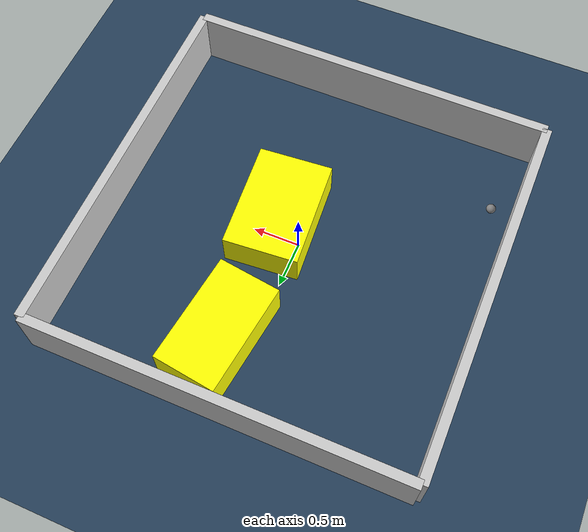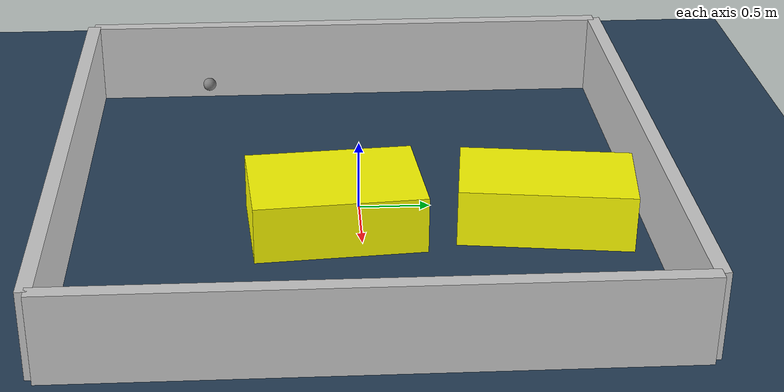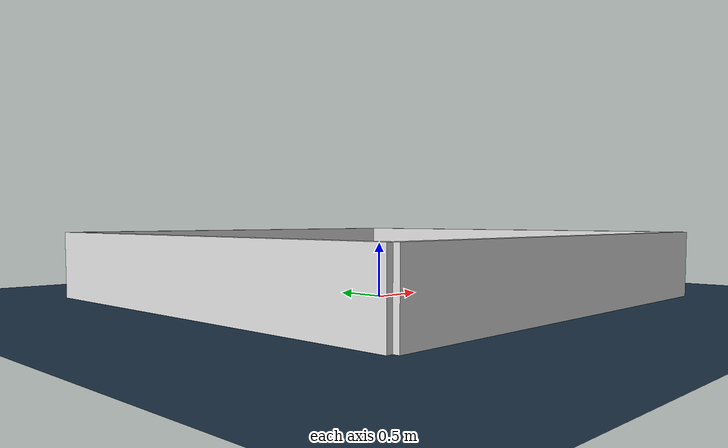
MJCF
<?xml version="1.0" ?>
<mujoco model="generated_environment">
  <option timestep="0.01" integrator="RK4" cone="elliptic"/>
  <default>
    <geom density="1"/>
  </default>
  <asset>
    <texture builtin="gradient" height="3072" rgb1="0.3 0.5 0.7" rgb2="0 0 0" type="skybox" width="512"/>
    <texture builtin="checker" height="300" mark="edge" markrgb="0.8 0.8 0.8" name="groundplane" rgb1="0.2 0.3 0.4" rgb2="0.1 0.2 0.3" type="2d" width="300"/>
    <material name="groundplane" reflectance="0.2" texrepeat="5 5" texture="groundplane" texuniform="true"/>
    <material name="robot" rgba="0.0 1.0 0.0 1"/>
  </asset>
  <worldbody>
    <light dir="0 0 -1" directional="true" pos="0 0 1.5"/>
    <geom condim="4" friction="1.0 0.005 0.001" material="groundplane" name="floor" size="0 0 0.05" type="plane"/>
    <body name="walls">
      <geom name="wall_1" condim="4" pos="-2.0 0.0 0.3" rgba="0.800000011920929 0.800000011920929 0.800000011920929 1.0" size="0.05 2.0 0.3" type="box"/>
      <geom name="wall_2" condim="4" pos="2.0 0.0 0.3" rgba="0.800000011920929 0.800000011920929 0.800000011920929 1.0" size="0.05 2.0 0.3" type="box"/>
      <geom name="wall_3" condim="4" pos="0.0 -2.0 0.3" rgba="0.800000011920929 0.800000011920929 0.800000011920929 1.0" size="2.0 0.05 0.3" type="box"/>
      <geom name="wall_4" condim="4" pos="0.0 2.0 0.3" rgba="0.800000011920929 0.800000011920929 0.800000011920929 1.0" size="2.0 0.05 0.3" type="box"/>
    </body>
    <body name="robot">
      <joint name="joint_x" type="slide" pos="0 0 0" axis="1 0 0"/>
      <joint name="joint_y" type="slide" pos="0 0 0" axis="0 1 0"/>
      <geom name="robot" type="sphere" pos="-1.7353956623273792 -1.094852177765004 0.2" size="0.05" mass="5." friction="1.0 0.005 0.0001" condim="4"/>
      <site name="sensor_ball"/>
    </body>
    <body name="obstacle_1_movable">
      <geom name="obstacle_1_movable" condim="4" pos="0.29664242501128313 -0.17778496009906464 0.2" euler="0 0 94.4990132332667" friction="1.0 0.005 0.001" rgba="1 1 0 1" size="0.5823788858283544 0.39840497244761164 0.2" type="box" mass="0.1"/>
      <joint type="free"/>
    </body>
    <body name="obstacle_2_movable">
      <geom name="obstacle_2_movable" condim="4" pos="0.30790066237819547 1.2634449087329003 0.2" euler="0 0 82.53076715064175" friction="1.0 0.005 0.001" rgba="1 1 0 1" size="0.5945949332077656 0.3390116711708471 0.2" type="box" mass="0.1"/>
      <joint type="free"/>
    </body>
  </worldbody>
  <actuator>
    <motor name="actuator_x" joint="joint_x" gear="1" ctrlrange="-1 1"/>
    <motor name="actuator_y" joint="joint_y" gear="1" ctrlrange="-1 1"/>
  </actuator>
</mujoco>
